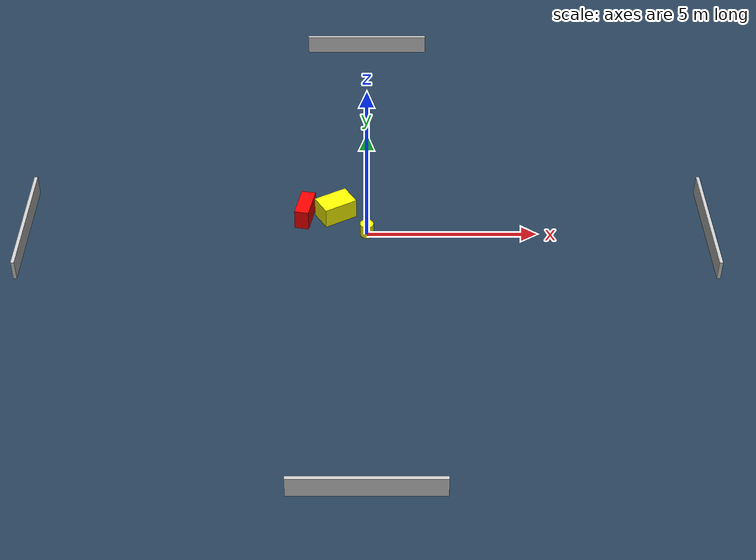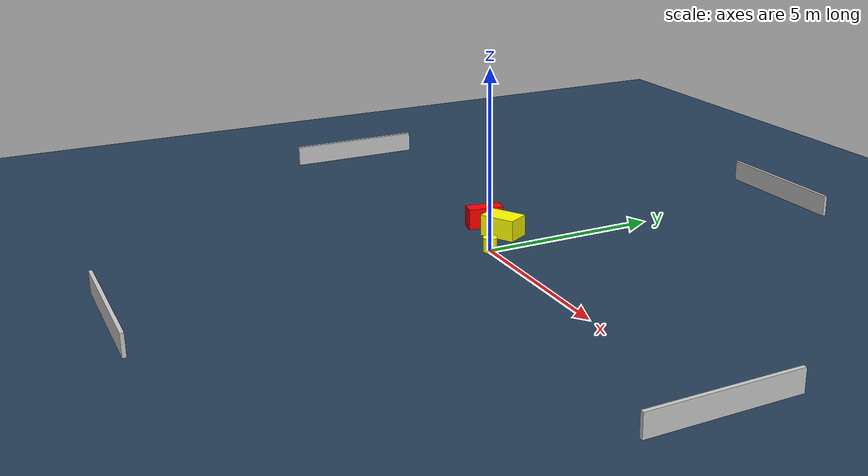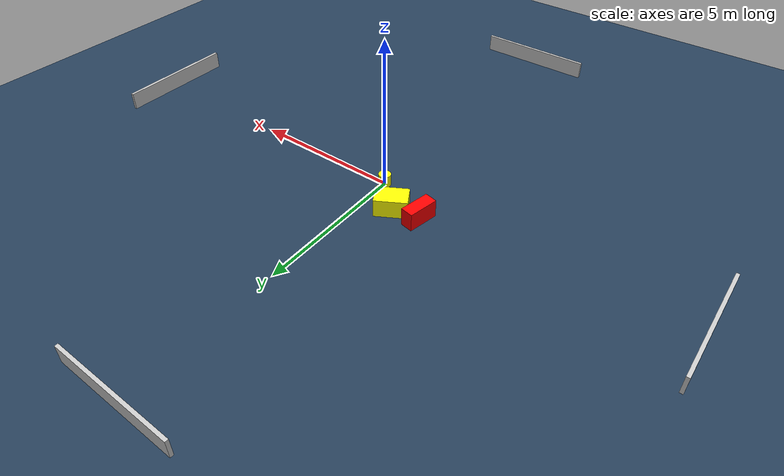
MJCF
<?xml version="1.0" ?>
<mujoco model="generated_environment">
  <option timestep="0.01" integrator="RK4" cone="elliptic"/>
  <default>
    <geom density="1"/>
  </default>
  <asset>
    <texture builtin="gradient" height="3072" name="skybox" rgb1="0.3 0.5 0.7" rgb2="0 0 0" type="skybox" width="512"/>
    <texture builtin="checker" height="300" name="groundplane" rgb1="0.2 0.3 0.4" rgb2="0.1 0.2 0.3" type="2d" width="300"/>
    <material name="groundplane" reflectance="0.2" texrepeat="5 5" texture="groundplane"/>
  </asset>
  <worldbody>
    <light dir="0 0 -1" directional="true" pos="0 0 1.5"/>
    <geom condim="3" friction="0.5 0.005 0.001" material="groundplane" name="floor" pos="0 0 0" size="0 0 0.05" type="plane"/>
    <body name="walls">
      <geom name="wall_1" condim="4" pos="-10.0 0.0 0.3" rgba="0.800000011920929 0.800000011920929 0.800000011920929 1.0" size="0.05 2.0 0.3" type="box"/>
      <geom name="wall_2" condim="4" pos="10.0 0.0 0.3" rgba="0.800000011920929 0.800000011920929 0.800000011920929 1.0" size="0.05 2.0 0.3" type="box"/>
      <geom name="wall_3" condim="4" pos="0.0 -10.0 0.3" rgba="0.800000011920929 0.800000011920929 0.800000011920929 1.0" size="2.0 0.05 0.3" type="box"/>
      <geom name="wall_4" condim="4" pos="0.0 10.0 0.3" rgba="0.800000011920929 0.800000011920929 0.800000011920929 1.0" size="2.0 0.05 0.3" type="box"/>
    </body>
    <body name="robot">
      <joint name="joint_x" type="slide" pos="0 0 0" axis="1 0 0"/>
      <joint name="joint_y" type="slide" pos="0 0 0" axis="0 1 0"/>
      <geom name="robot" type="cylinder" pos="0.0 0.0 0.2" size="0.2 0.2 0.0" mass="5.0" friction="1.0 0.005 0.0001" condim="4" rgba="1.0 1.0 0.0 1.0"/>
    </body>
    <body name="obstacle_1_movable">
      <geom name="obstacle_1_movable" condim="4" pos="-0.9266370101798858 0.8837959339901503 0.3" euler="0 0 29.967315055742212" friction="0.0 0.005 0.001" rgba="1.0 1.0 0.0 1.0" size="0.5169006864645668 0.34370525336582125 0.3" type="box" mass="0.1"/>
      <joint type="free"/>
    </body>
    <body name="obstacle_2_static">
      <geom name="obstacle_2_static" condim="4" pos="-1.829572310070387 0.7627712120116281 0.3" euler="0 0 169.0290533433846" friction="0.0 0.005 0.001" rgba="1.0 0.0 0.0 1.0" size="0.2086925311732869 0.5005302978373809 0.3" type="box"/>
    </body>
  </worldbody>
  <actuator>
    <motor name="actuator_x" joint="joint_x" gear="1" ctrlrange="-1 1"/>
    <motor name="actuator_y" joint="joint_y" gear="1" ctrlrange="-1 1"/>
  </actuator>
</mujoco>
